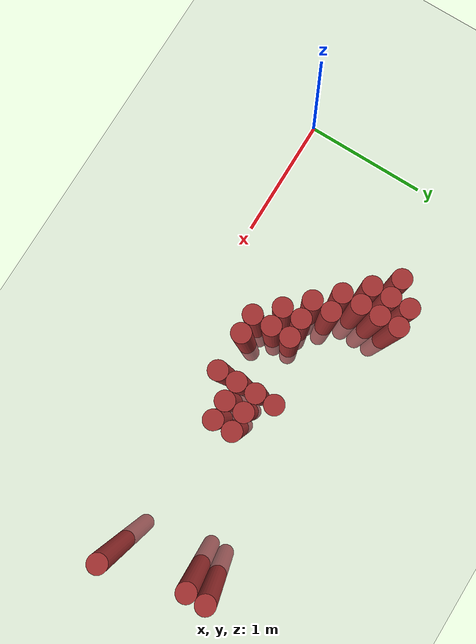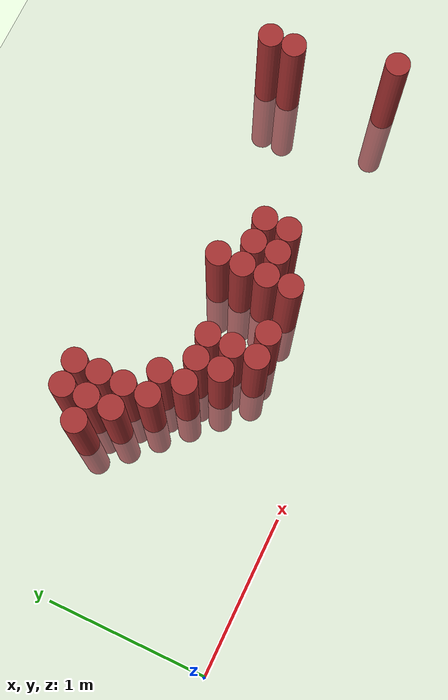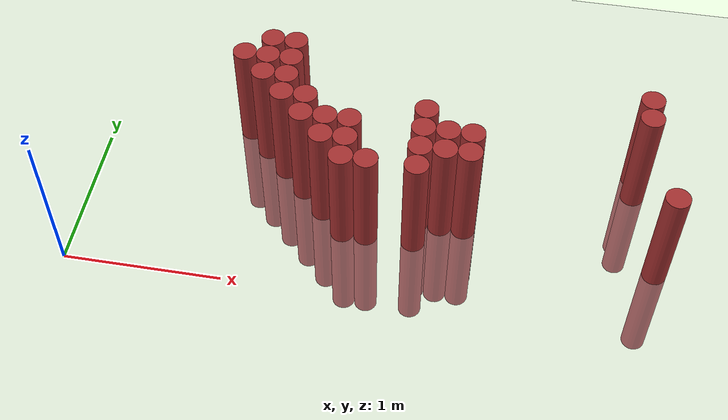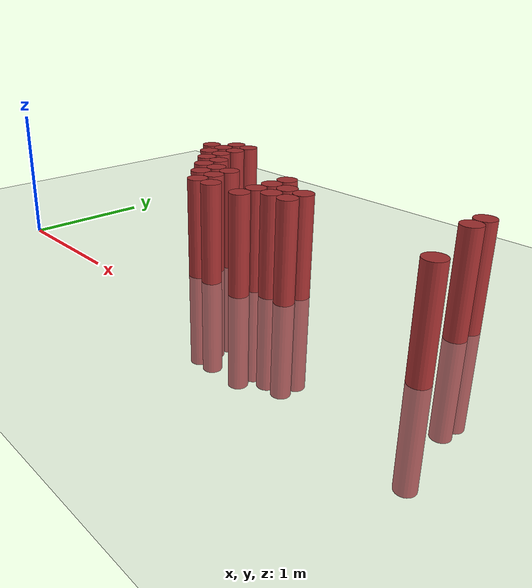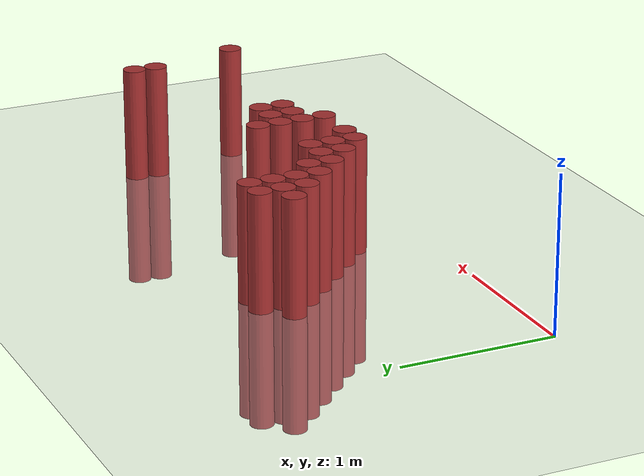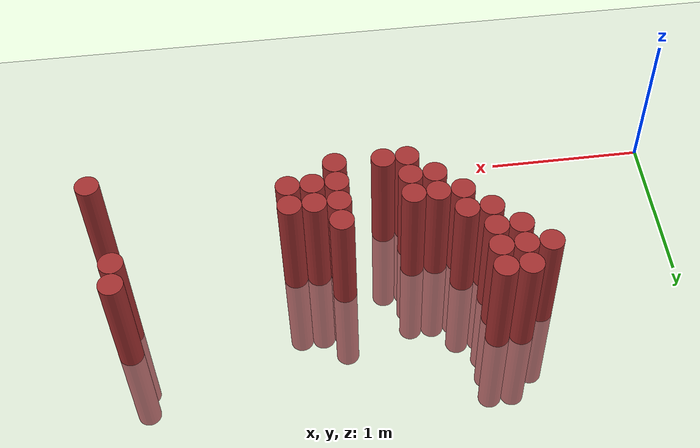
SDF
<sdf version="1.6">
 <world name="default">
  <model name="ground_plane">
   <static>1</static>
   <link name="link">
    <collision name="collision">
     <geometry><plane><normal>0 0 1</normal><size>100 100</size></plane></geometry>
     <surface><friction><ode><mu>100</mu><mu2>50</mu2></ode></friction></surface>
    </collision>
    <visual name="visual">
     <cast_shadows>0</cast_shadows>
     <geometry><plane><normal>0 0 1</normal><size>100 100</size></plane></geometry>
     <material>
      <script><uri>file://media/materials/scripts/gazebo.material</uri><name>Gazebo/Grey</name></script>
     </material>
    </visual>
   </link>
  </model>
  <model name="unit_cylinder_402">
   <static>1</static>
   <pose>0.925000 1.225000 0.000000 0.000000 0.000000 0.000000</pose>
   <link name="link">
    <inertial>
     <mass>1</mass>
     <inertia><ixx>0.145833</ixx><ixy>0</ixy><ixz>0</ixz><iyy>0.145833</iyy><iyz>0</iyz><izz>0.125</izz></inertia>
    </inertial>
    <collision name="collision">
     <geometry><cylinder><radius>0.075000</radius><length>1.5</length></cylinder></geometry>
    </collision>
    <visual name="visual">
     <geometry><cylinder><radius>0.075000</radius><length>1.5</length></cylinder></geometry>
     <material>
      <ambient>0.648000 0.192000 0.192000 1</ambient>
      <diffuse>0.648000 0.192000 0.192000 1</diffuse>
     </material>
     <material>
      <script><name>Gazebo/Grey</name><uri>file://media/materials/scripts/gazebo.material</uri></script>
     </material>
    </visual>
   </link>
  </model>
  <model name="unit_cylinder_405">
   <static>1</static>
   <pose>1.075000 1.075000 0.000000 0.000000 0.000000 0.000000</pose>
   <link name="link">
    <inertial>
     <mass>1</mass>
     <inertia><ixx>0.145833</ixx><ixy>0</ixy><ixz>0</ixz><iyy>0.145833</iyy><iyz>0</iyz><izz>0.125</izz></inertia>
    </inertial>
    <collision name="collision">
     <geometry><cylinder><radius>0.075000</radius><length>1.5</length></cylinder></geometry>
    </collision>
    <visual name="visual">
     <geometry><cylinder><radius>0.075000</radius><length>1.5</length></cylinder></geometry>
     <material>
      <ambient>0.648000 0.192000 0.192000 1</ambient>
      <diffuse>0.648000 0.192000 0.192000 1</diffuse>
     </material>
     <material>
      <script><name>Gazebo/Grey</name><uri>file://media/materials/scripts/gazebo.material</uri></script>
     </material>
    </visual>
   </link>
  </model>
  <model name="unit_cylinder_406">
   <static>1</static>
   <pose>1.075000 1.225000 0.000000 0.000000 0.000000 0.000000</pose>
   <link name="link">
    <inertial>
     <mass>1</mass>
     <inertia><ixx>0.145833</ixx><ixy>0</ixy><ixz>0</ixz><iyy>0.145833</iyy><iyz>0</iyz><izz>0.125</izz></inertia>
    </inertial>
    <collision name="collision">
     <geometry><cylinder><radius>0.075000</radius><length>1.5</length></cylinder></geometry>
    </collision>
    <visual name="visual">
     <geometry><cylinder><radius>0.075000</radius><length>1.5</length></cylinder></geometry>
     <material>
      <ambient>0.648000 0.192000 0.192000 1</ambient>
      <diffuse>0.648000 0.192000 0.192000 1</diffuse>
     </material>
     <material>
      <script><name>Gazebo/Grey</name><uri>file://media/materials/scripts/gazebo.material</uri></script>
     </material>
    </visual>
   </link>
  </model>
  <model name="unit_cylinder_407">
   <static>1</static>
   <pose>1.075000 1.375000 0.000000 0.000000 0.000000 0.000000</pose>
   <link name="link">
    <inertial>
     <mass>1</mass>
     <inertia><ixx>0.145833</ixx><ixy>0</ixy><ixz>0</ixz><iyy>0.145833</iyy><iyz>0</iyz><izz>0.125</izz></inertia>
    </inertial>
    <collision name="collision">
     <geometry><cylinder><radius>0.075000</radius><length>1.5</length></cylinder></geometry>
    </collision>
    <visual name="visual">
     <geometry><cylinder><radius>0.075000</radius><length>1.5</length></cylinder></geometry>
     <material>
      <ambient>0.648000 0.192000 0.192000 1</ambient>
      <diffuse>0.648000 0.192000 0.192000 1</diffuse>
     </material>
     <material>
      <script><name>Gazebo/Grey</name><uri>file://media/materials/scripts/gazebo.material</uri></script>
     </material>
    </visual>
   </link>
  </model>
  <model name="unit_cylinder_414">
   <static>1</static>
   <pose>1.225000 0.925000 0.000000 0.000000 0.000000 0.000000</pose>
   <link name="link">
    <inertial>
     <mass>1</mass>
     <inertia><ixx>0.145833</ixx><ixy>0</ixy><ixz>0</ixz><iyy>0.145833</iyy><iyz>0</iyz><izz>0.125</izz></inertia>
    </inertial>
    <collision name="collision">
     <geometry><cylinder><radius>0.075000</radius><length>1.5</length></cylinder></geometry>
    </collision>
    <visual name="visual">
     <geometry><cylinder><radius>0.075000</radius><length>1.5</length></cylinder></geometry>
     <material>
      <ambient>0.648000 0.192000 0.192000 1</ambient>
      <diffuse>0.648000 0.192000 0.192000 1</diffuse>
     </material>
     <material>
      <script><name>Gazebo/Grey</name><uri>file://media/materials/scripts/gazebo.material</uri></script>
     </material>
    </visual>
   </link>
  </model>
  <model name="unit_cylinder_415">
   <static>1</static>
   <pose>1.225000 1.075000 0.000000 0.000000 0.000000 0.000000</pose>
   <link name="link">
    <inertial>
     <mass>1</mass>
     <inertia><ixx>0.145833</ixx><ixy>0</ixy><ixz>0</ixz><iyy>0.145833</iyy><iyz>0</iyz><izz>0.125</izz></inertia>
    </inertial>
    <collision name="collision">
     <geometry><cylinder><radius>0.075000</radius><length>1.5</length></cylinder></geometry>
    </collision>
    <visual name="visual">
     <geometry><cylinder><radius>0.075000</radius><length>1.5</length></cylinder></geometry>
     <material>
      <ambient>0.648000 0.192000 0.192000 1</ambient>
      <diffuse>0.648000 0.192000 0.192000 1</diffuse>
     </material>
     <material>
      <script><name>Gazebo/Grey</name><uri>file://media/materials/scripts/gazebo.material</uri></script>
     </material>
    </visual>
   </link>
  </model>
  <model name="unit_cylinder_416">
   <static>1</static>
   <pose>1.225000 1.225000 0.000000 0.000000 0.000000 0.000000</pose>
   <link name="link">
    <inertial>
     <mass>1</mass>
     <inertia><ixx>0.145833</ixx><ixy>0</ixy><ixz>0</ixz><iyy>0.145833</iyy><iyz>0</iyz><izz>0.125</izz></inertia>
    </inertial>
    <collision name="collision">
     <geometry><cylinder><radius>0.075000</radius><length>1.5</length></cylinder></geometry>
    </collision>
    <visual name="visual">
     <geometry><cylinder><radius>0.075000</radius><length>1.5</length></cylinder></geometry>
     <material>
      <ambient>0.648000 0.192000 0.192000 1</ambient>
      <diffuse>0.648000 0.192000 0.192000 1</diffuse>
     </material>
     <material>
      <script><name>Gazebo/Grey</name><uri>file://media/materials/scripts/gazebo.material</uri></script>
     </material>
    </visual>
   </link>
  </model>
  <model name="unit_cylinder_417">
   <static>1</static>
   <pose>1.225000 1.375000 0.000000 0.000000 0.000000 0.000000</pose>
   <link name="link">
    <inertial>
     <mass>1</mass>
     <inertia><ixx>0.145833</ixx><ixy>0</ixy><ixz>0</ixz><iyy>0.145833</iyy><iyz>0</iyz><izz>0.125</izz></inertia>
    </inertial>
    <collision name="collision">
     <geometry><cylinder><radius>0.075000</radius><length>1.5</length></cylinder></geometry>
    </collision>
    <visual name="visual">
     <geometry><cylinder><radius>0.075000</radius><length>1.5</length></cylinder></geometry>
     <material>
      <ambient>0.648000 0.192000 0.192000 1</ambient>
      <diffuse>0.648000 0.192000 0.192000 1</diffuse>
     </material>
     <material>
      <script><name>Gazebo/Grey</name><uri>file://media/materials/scripts/gazebo.material</uri></script>
     </material>
    </visual>
   </link>
  </model>
  <model name="unit_cylinder_428">
   <static>1</static>
   <pose>1.375000 0.775000 0.000000 0.000000 0.000000 0.000000</pose>
   <link name="link">
    <inertial>
     <mass>1</mass>
     <inertia><ixx>0.145833</ixx><ixy>0</ixy><ixz>0</ixz><iyy>0.145833</iyy><iyz>0</iyz><izz>0.125</izz></inertia>
    </inertial>
    <collision name="collision">
     <geometry><cylinder><radius>0.075000</radius><length>1.5</length></cylinder></geometry>
    </collision>
    <visual name="visual">
     <geometry><cylinder><radius>0.075000</radius><length>1.5</length></cylinder></geometry>
     <material>
      <ambient>0.648000 0.192000 0.192000 1</ambient>
      <diffuse>0.648000 0.192000 0.192000 1</diffuse>
     </material>
     <material>
      <script><name>Gazebo/Grey</name><uri>file://media/materials/scripts/gazebo.material</uri></script>
     </material>
    </visual>
   </link>
  </model>
  <model name="unit_cylinder_429">
   <static>1</static>
   <pose>1.375000 0.925000 0.000000 0.000000 0.000000 0.000000</pose>
   <link name="link">
    <inertial>
     <mass>1</mass>
     <inertia><ixx>0.145833</ixx><ixy>0</ixy><ixz>0</ixz><iyy>0.145833</iyy><iyz>0</iyz><izz>0.125</izz></inertia>
    </inertial>
    <collision name="collision">
     <geometry><cylinder><radius>0.075000</radius><length>1.5</length></cylinder></geometry>
    </collision>
    <visual name="visual">
     <geometry><cylinder><radius>0.075000</radius><length>1.5</length></cylinder></geometry>
     <material>
      <ambient>0.648000 0.192000 0.192000 1</ambient>
      <diffuse>0.648000 0.192000 0.192000 1</diffuse>
     </material>
     <material>
      <script><name>Gazebo/Grey</name><uri>file://media/materials/scripts/gazebo.material</uri></script>
     </material>
    </visual>
   </link>
  </model>
  <model name="unit_cylinder_441">
   <static>1</static>
   <pose>1.525000 0.625000 0.000000 0.000000 0.000000 0.000000</pose>
   <link name="link">
    <inertial>
     <mass>1</mass>
     <inertia><ixx>0.145833</ixx><ixy>0</ixy><ixz>0</ixz><iyy>0.145833</iyy><iyz>0</iyz><izz>0.125</izz></inertia>
    </inertial>
    <collision name="collision">
     <geometry><cylinder><radius>0.075000</radius><length>1.5</length></cylinder></geometry>
    </collision>
    <visual name="visual">
     <geometry><cylinder><radius>0.075000</radius><length>1.5</length></cylinder></geometry>
     <material>
      <ambient>0.648000 0.192000 0.192000 1</ambient>
      <diffuse>0.648000 0.192000 0.192000 1</diffuse>
     </material>
     <material>
      <script><name>Gazebo/Grey</name><uri>file://media/materials/scripts/gazebo.material</uri></script>
     </material>
    </visual>
   </link>
  </model>
  <model name="unit_cylinder_442">
   <static>1</static>
   <pose>1.525000 0.775000 0.000000 0.000000 0.000000 0.000000</pose>
   <link name="link">
    <inertial>
     <mass>1</mass>
     <inertia><ixx>0.145833</ixx><ixy>0</ixy><ixz>0</ixz><iyy>0.145833</iyy><iyz>0</iyz><izz>0.125</izz></inertia>
    </inertial>
    <collision name="collision">
     <geometry><cylinder><radius>0.075000</radius><length>1.5</length></cylinder></geometry>
    </collision>
    <visual name="visual">
     <geometry><cylinder><radius>0.075000</radius><length>1.5</length></cylinder></geometry>
     <material>
      <ambient>0.648000 0.192000 0.192000 1</ambient>
      <diffuse>0.648000 0.192000 0.192000 1</diffuse>
     </material>
     <material>
      <script><name>Gazebo/Grey</name><uri>file://media/materials/scripts/gazebo.material</uri></script>
     </material>
    </visual>
   </link>
  </model>
  <model name="unit_cylinder_451">
   <static>1</static>
   <pose>1.675000 0.475000 0.000000 0.000000 0.000000 0.000000</pose>
   <link name="link">
    <inertial>
     <mass>1</mass>
     <inertia><ixx>0.145833</ixx><ixy>0</ixy><ixz>0</ixz><iyy>0.145833</iyy><iyz>0</iyz><izz>0.125</izz></inertia>
    </inertial>
    <collision name="collision">
     <geometry><cylinder><radius>0.075000</radius><length>1.5</length></cylinder></geometry>
    </collision>
    <visual name="visual">
     <geometry><cylinder><radius>0.075000</radius><length>1.5</length></cylinder></geometry>
     <material>
      <ambient>0.648000 0.192000 0.192000 1</ambient>
      <diffuse>0.648000 0.192000 0.192000 1</diffuse>
     </material>
     <material>
      <script><name>Gazebo/Grey</name><uri>file://media/materials/scripts/gazebo.material</uri></script>
     </material>
    </visual>
   </link>
  </model>
  <model name="unit_cylinder_452">
   <static>1</static>
   <pose>1.675000 0.625000 0.000000 0.000000 0.000000 0.000000</pose>
   <link name="link">
    <inertial>
     <mass>1</mass>
     <inertia><ixx>0.145833</ixx><ixy>0</ixy><ixz>0</ixz><iyy>0.145833</iyy><iyz>0</iyz><izz>0.125</izz></inertia>
    </inertial>
    <collision name="collision">
     <geometry><cylinder><radius>0.075000</radius><length>1.5</length></cylinder></geometry>
    </collision>
    <visual name="visual">
     <geometry><cylinder><radius>0.075000</radius><length>1.5</length></cylinder></geometry>
     <material>
      <ambient>0.648000 0.192000 0.192000 1</ambient>
      <diffuse>0.648000 0.192000 0.192000 1</diffuse>
     </material>
     <material>
      <script><name>Gazebo/Grey</name><uri>file://media/materials/scripts/gazebo.material</uri></script>
     </material>
    </visual>
   </link>
  </model>
  <model name="unit_cylinder_453">
   <static>1</static>
   <pose>1.675000 0.775000 0.000000 0.000000 0.000000 0.000000</pose>
   <link name="link">
    <inertial>
     <mass>1</mass>
     <inertia><ixx>0.145833</ixx><ixy>0</ixy><ixz>0</ixz><iyy>0.145833</iyy><iyz>0</iyz><izz>0.125</izz></inertia>
    </inertial>
    <collision name="collision">
     <geometry><cylinder><radius>0.075000</radius><length>1.5</length></cylinder></geometry>
    </collision>
    <visual name="visual">
     <geometry><cylinder><radius>0.075000</radius><length>1.5</length></cylinder></geometry>
     <material>
      <ambient>0.648000 0.192000 0.192000 1</ambient>
      <diffuse>0.648000 0.192000 0.192000 1</diffuse>
     </material>
     <material>
      <script><name>Gazebo/Grey</name><uri>file://media/materials/scripts/gazebo.material</uri></script>
     </material>
    </visual>
   </link>
  </model>
  <model name="unit_cylinder_461">
   <static>1</static>
   <pose>1.825000 0.475000 0.000000 0.000000 0.000000 0.000000</pose>
   <link name="link">
    <inertial>
     <mass>1</mass>
     <inertia><ixx>0.145833</ixx><ixy>0</ixy><ixz>0</ixz><iyy>0.145833</iyy><iyz>0</iyz><izz>0.125</izz></inertia>
    </inertial>
    <collision name="collision">
     <geometry><cylinder><radius>0.075000</radius><length>1.5</length></cylinder></geometry>
    </collision>
    <visual name="visual">
     <geometry><cylinder><radius>0.075000</radius><length>1.5</length></cylinder></geometry>
     <material>
      <ambient>0.648000 0.192000 0.192000 1</ambient>
      <diffuse>0.648000 0.192000 0.192000 1</diffuse>
     </material>
     <material>
      <script><name>Gazebo/Grey</name><uri>file://media/materials/scripts/gazebo.material</uri></script>
     </material>
    </visual>
   </link>
  </model>
  <model name="unit_cylinder_481">
   <static>1</static>
   <pose>2.125000 0.475000 0.000000 0.000000 0.000000 0.000000</pose>
   <link name="link">
    <inertial>
     <mass>1</mass>
     <inertia><ixx>0.145833</ixx><ixy>0</ixy><ixz>0</ixz><iyy>0.145833</iyy><iyz>0</iyz><izz>0.125</izz></inertia>
    </inertial>
    <collision name="collision">
     <geometry><cylinder><radius>0.075000</radius><length>1.5</length></cylinder></geometry>
    </collision>
    <visual name="visual">
     <geometry><cylinder><radius>0.075000</radius><length>1.5</length></cylinder></geometry>
     <material>
      <ambient>0.648000 0.192000 0.192000 1</ambient>
      <diffuse>0.648000 0.192000 0.192000 1</diffuse>
     </material>
     <material>
      <script><name>Gazebo/Grey</name><uri>file://media/materials/scripts/gazebo.material</uri></script>
     </material>
    </visual>
   </link>
  </model>
  <model name="unit_cylinder_482">
   <static>1</static>
   <pose>2.125000 0.625000 0.000000 0.000000 0.000000 0.000000</pose>
   <link name="link">
    <inertial>
     <mass>1</mass>
     <inertia><ixx>0.145833</ixx><ixy>0</ixy><ixz>0</ixz><iyy>0.145833</iyy><iyz>0</iyz><izz>0.125</izz></inertia>
    </inertial>
    <collision name="collision">
     <geometry><cylinder><radius>0.075000</radius><length>1.5</length></cylinder></geometry>
    </collision>
    <visual name="visual">
     <geometry><cylinder><radius>0.075000</radius><length>1.5</length></cylinder></geometry>
     <material>
      <ambient>0.648000 0.192000 0.192000 1</ambient>
      <diffuse>0.648000 0.192000 0.192000 1</diffuse>
     </material>
     <material>
      <script><name>Gazebo/Grey</name><uri>file://media/materials/scripts/gazebo.material</uri></script>
     </material>
    </visual>
   </link>
  </model>
  <model name="unit_cylinder_483">
   <static>1</static>
   <pose>2.125000 0.775000 0.000000 0.000000 0.000000 0.000000</pose>
   <link name="link">
    <inertial>
     <mass>1</mass>
     <inertia><ixx>0.145833</ixx><ixy>0</ixy><ixz>0</ixz><iyy>0.145833</iyy><iyz>0</iyz><izz>0.125</izz></inertia>
    </inertial>
    <collision name="collision">
     <geometry><cylinder><radius>0.075000</radius><length>1.5</length></cylinder></geometry>
    </collision>
    <visual name="visual">
     <geometry><cylinder><radius>0.075000</radius><length>1.5</length></cylinder></geometry>
     <material>
      <ambient>0.648000 0.192000 0.192000 1</ambient>
      <diffuse>0.648000 0.192000 0.192000 1</diffuse>
     </material>
     <material>
      <script><name>Gazebo/Grey</name><uri>file://media/materials/scripts/gazebo.material</uri></script>
     </material>
    </visual>
   </link>
  </model>
  <model name="unit_cylinder_484">
   <static>1</static>
   <pose>2.125000 0.925000 0.000000 0.000000 0.000000 0.000000</pose>
   <link name="link">
    <inertial>
     <mass>1</mass>
     <inertia><ixx>0.145833</ixx><ixy>0</ixy><ixz>0</ixz><iyy>0.145833</iyy><iyz>0</iyz><izz>0.125</izz></inertia>
    </inertial>
    <collision name="collision">
     <geometry><cylinder><radius>0.075000</radius><length>1.5</length></cylinder></geometry>
    </collision>
    <visual name="visual">
     <geometry><cylinder><radius>0.075000</radius><length>1.5</length></cylinder></geometry>
     <material>
      <ambient>0.648000 0.192000 0.192000 1</ambient>
      <diffuse>0.648000 0.192000 0.192000 1</diffuse>
     </material>
     <material>
      <script><name>Gazebo/Grey</name><uri>file://media/materials/scripts/gazebo.material</uri></script>
     </material>
    </visual>
   </link>
  </model>
  <model name="unit_cylinder_492">
   <static>1</static>
   <pose>2.275000 0.625000 0.000000 0.000000 0.000000 0.000000</pose>
   <link name="link">
    <inertial>
     <mass>1</mass>
     <inertia><ixx>0.145833</ixx><ixy>0</ixy><ixz>0</ixz><iyy>0.145833</iyy><iyz>0</iyz><izz>0.125</izz></inertia>
    </inertial>
    <collision name="collision">
     <geometry><cylinder><radius>0.075000</radius><length>1.5</length></cylinder></geometry>
    </collision>
    <visual name="visual">
     <geometry><cylinder><radius>0.075000</radius><length>1.5</length></cylinder></geometry>
     <material>
      <ambient>0.648000 0.192000 0.192000 1</ambient>
      <diffuse>0.648000 0.192000 0.192000 1</diffuse>
     </material>
     <material>
      <script><name>Gazebo/Grey</name><uri>file://media/materials/scripts/gazebo.material</uri></script>
     </material>
    </visual>
   </link>
  </model>
  <model name="unit_cylinder_493">
   <static>1</static>
   <pose>2.275000 0.775000 0.000000 0.000000 0.000000 0.000000</pose>
   <link name="link">
    <inertial>
     <mass>1</mass>
     <inertia><ixx>0.145833</ixx><ixy>0</ixy><ixz>0</ixz><iyy>0.145833</iyy><iyz>0</iyz><izz>0.125</izz></inertia>
    </inertial>
    <collision name="collision">
     <geometry><cylinder><radius>0.075000</radius><length>1.5</length></cylinder></geometry>
    </collision>
    <visual name="visual">
     <geometry><cylinder><radius>0.075000</radius><length>1.5</length></cylinder></geometry>
     <material>
      <ambient>0.648000 0.192000 0.192000 1</ambient>
      <diffuse>0.648000 0.192000 0.192000 1</diffuse>
     </material>
     <material>
      <script><name>Gazebo/Grey</name><uri>file://media/materials/scripts/gazebo.material</uri></script>
     </material>
    </visual>
   </link>
  </model>
  <model name="unit_cylinder_506">
   <static>1</static>
   <pose>2.425000 0.625000 0.000000 0.000000 0.000000 0.000000</pose>
   <link name="link">
    <inertial>
     <mass>1</mass>
     <inertia><ixx>0.145833</ixx><ixy>0</ixy><ixz>0</ixz><iyy>0.145833</iyy><iyz>0</iyz><izz>0.125</izz></inertia>
    </inertial>
    <collision name="collision">
     <geometry><cylinder><radius>0.075000</radius><length>1.5</length></cylinder></geometry>
    </collision>
    <visual name="visual">
     <geometry><cylinder><radius>0.075000</radius><length>1.5</length></cylinder></geometry>
     <material>
      <ambient>0.648000 0.192000 0.192000 1</ambient>
      <diffuse>0.648000 0.192000 0.192000 1</diffuse>
     </material>
     <material>
      <script><name>Gazebo/Grey</name><uri>file://media/materials/scripts/gazebo.material</uri></script>
     </material>
    </visual>
   </link>
  </model>
  <model name="unit_cylinder_507">
   <static>1</static>
   <pose>2.425000 0.775000 0.000000 0.000000 0.000000 0.000000</pose>
   <link name="link">
    <inertial>
     <mass>1</mass>
     <inertia><ixx>0.145833</ixx><ixy>0</ixy><ixz>0</ixz><iyy>0.145833</iyy><iyz>0</iyz><izz>0.125</izz></inertia>
    </inertial>
    <collision name="collision">
     <geometry><cylinder><radius>0.075000</radius><length>1.5</length></cylinder></geometry>
    </collision>
    <visual name="visual">
     <geometry><cylinder><radius>0.075000</radius><length>1.5</length></cylinder></geometry>
     <material>
      <ambient>0.648000 0.192000 0.192000 1</ambient>
      <diffuse>0.648000 0.192000 0.192000 1</diffuse>
     </material>
     <material>
      <script><name>Gazebo/Grey</name><uri>file://media/materials/scripts/gazebo.material</uri></script>
     </material>
    </visual>
   </link>
  </model>
  <model name="unit_cylinder_558">
   <static>1</static>
   <pose>3.475000 1.075000 0.000000 0.000000 0.000000 0.000000</pose>
   <link name="link">
    <inertial>
     <mass>1</mass>
     <inertia><ixx>0.145833</ixx><ixy>0</ixy><ixz>0</ixz><iyy>0.145833</iyy><iyz>0</iyz><izz>0.125</izz></inertia>
    </inertial>
    <collision name="collision">
     <geometry><cylinder><radius>0.075000</radius><length>1.5</length></cylinder></geometry>
    </collision>
    <visual name="visual">
     <geometry><cylinder><radius>0.075000</radius><length>1.5</length></cylinder></geometry>
     <material>
      <ambient>0.648000 0.192000 0.192000 1</ambient>
      <diffuse>0.648000 0.192000 0.192000 1</diffuse>
     </material>
     <material>
      <script><name>Gazebo/Grey</name><uri>file://media/materials/scripts/gazebo.material</uri></script>
     </material>
    </visual>
   </link>
  </model>
  <model name="unit_cylinder_559">
   <static>1</static>
   <pose>3.475000 1.225000 0.000000 0.000000 0.000000 0.000000</pose>
   <link name="link">
    <inertial>
     <mass>1</mass>
     <inertia><ixx>0.145833</ixx><ixy>0</ixy><ixz>0</ixz><iyy>0.145833</iyy><iyz>0</iyz><izz>0.125</izz></inertia>
    </inertial>
    <collision name="collision">
     <geometry><cylinder><radius>0.075000</radius><length>1.5</length></cylinder></geometry>
    </collision>
    <visual name="visual">
     <geometry><cylinder><radius>0.075000</radius><length>1.5</length></cylinder></geometry>
     <material>
      <ambient>0.648000 0.192000 0.192000 1</ambient>
      <diffuse>0.648000 0.192000 0.192000 1</diffuse>
     </material>
     <material>
      <script><name>Gazebo/Grey</name><uri>file://media/materials/scripts/gazebo.material</uri></script>
     </material>
    </visual>
   </link>
  </model>
  <model name="unit_cylinder_563">
   <static>1</static>
   <pose>3.625000 0.475000 0.000000 0.000000 0.000000 0.000000</pose>
   <link name="link">
    <inertial>
     <mass>1</mass>
     <inertia><ixx>0.145833</ixx><ixy>0</ixy><ixz>0</ixz><iyy>0.145833</iyy><iyz>0</iyz><izz>0.125</izz></inertia>
    </inertial>
    <collision name="collision">
     <geometry><cylinder><radius>0.075000</radius><length>1.5</length></cylinder></geometry>
    </collision>
    <visual name="visual">
     <geometry><cylinder><radius>0.075000</radius><length>1.5</length></cylinder></geometry>
     <material>
      <ambient>0.648000 0.192000 0.192000 1</ambient>
      <diffuse>0.648000 0.192000 0.192000 1</diffuse>
     </material>
     <material>
      <script><name>Gazebo/Grey</name><uri>file://media/materials/scripts/gazebo.material</uri></script>
     </material>
    </visual>
   </link>
  </model>
 </world>
</sdf>
